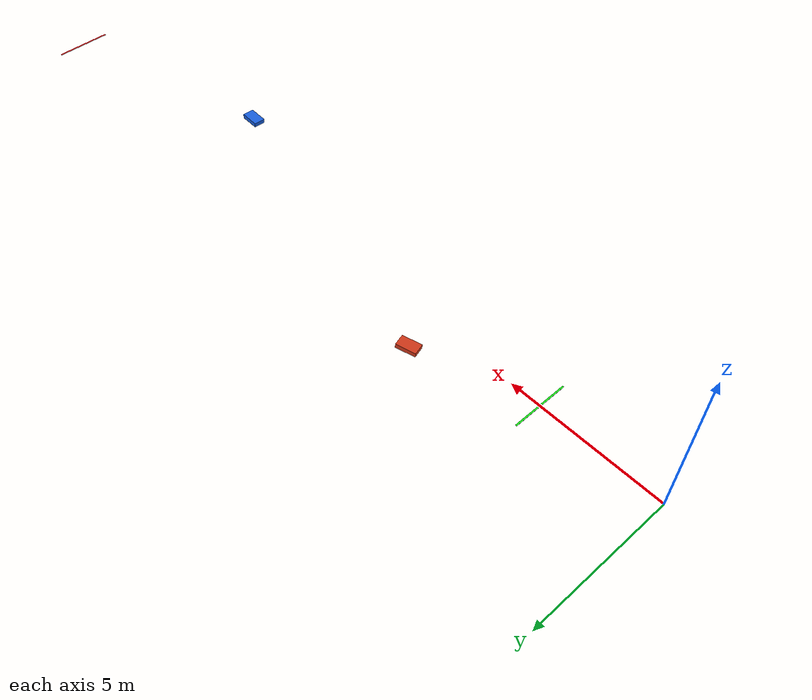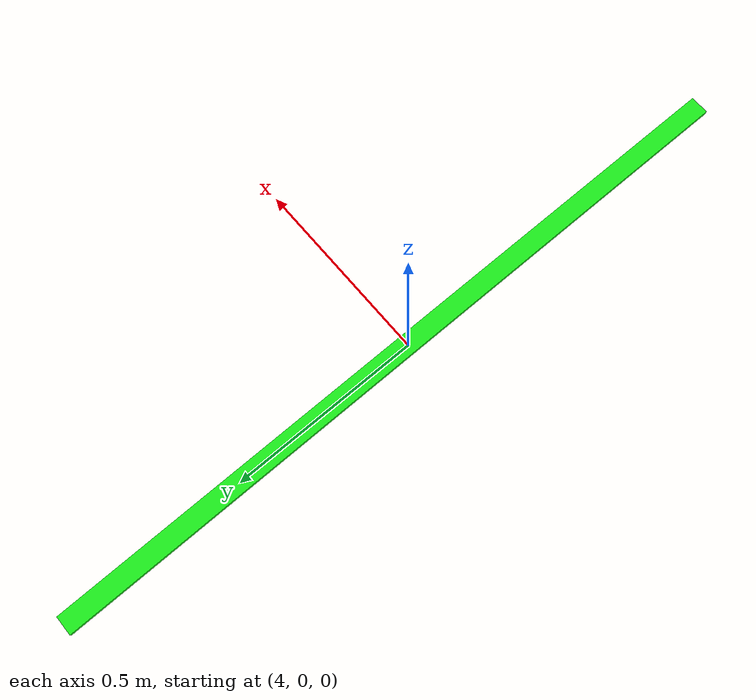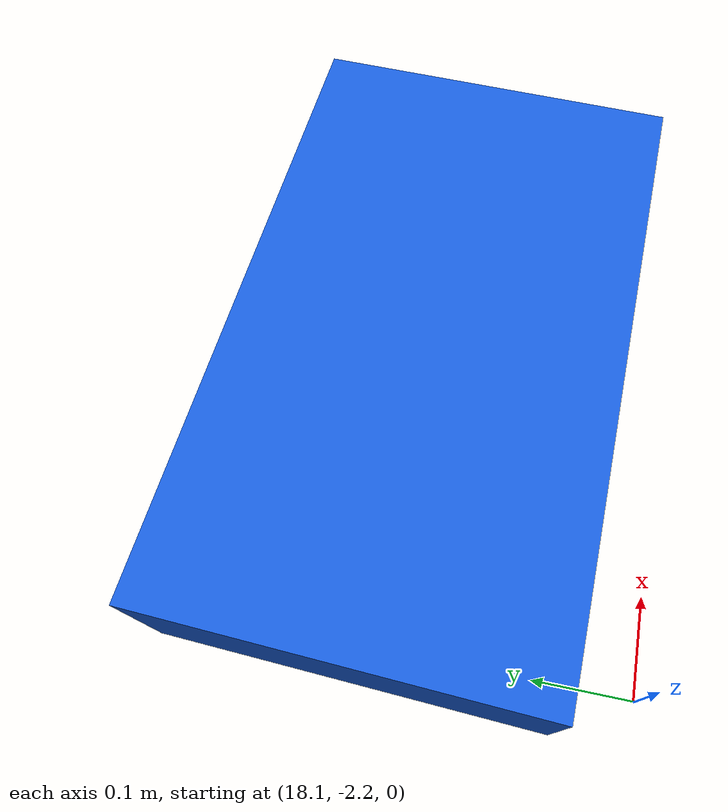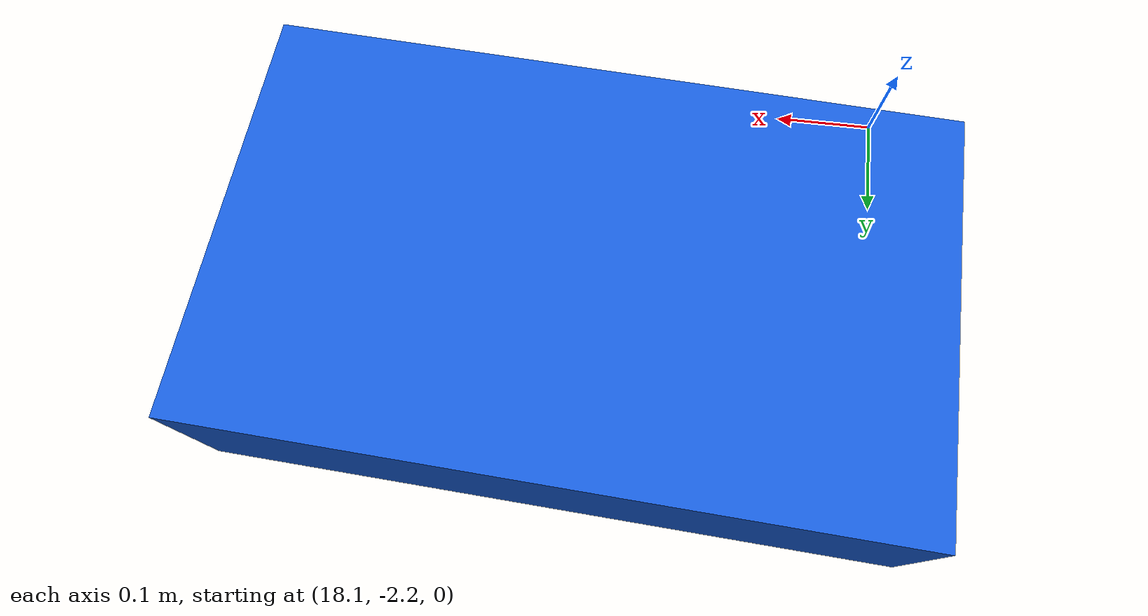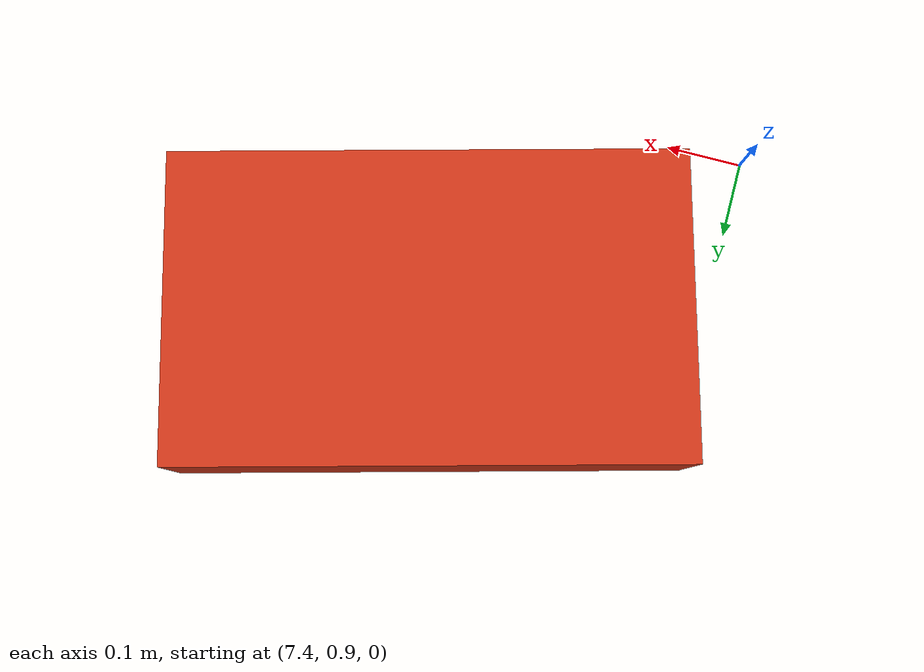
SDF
<sdf version="1.10">
 <world name="s_curve_avoidance">
  <physics name="default_physics" type="ode">
   <max_step_size>0.001</max_step_size>
   <real_time_factor>1.0</real_time_factor>
  </physics>
  <plugin filename="gz-sim-physics-system" name="gz::sim::systems::Physics"/>
  <plugin filename="gz-sim-user-commands-system" name="gz::sim::systems::UserCommands"/>
  <plugin filename="gz-sim-scene-broadcaster-system" name="gz::sim::systems::SceneBroadcaster"/>
  <plugin filename="gz-sim-sensors-system" name="gz::sim::systems::Sensors">
   <render_engine>ogre2</render_engine>
  </plugin>
  <gravity>0 0 -9.81</gravity>
  <scene>
   <ambient>0.65 0.65 0.65 1</ambient>
   <background>0.78 0.85 0.92 1</background>
   <shadows>true</shadows>
  </scene>
  <light type="directional" name="sun">
   <pose>15 0 18 0 0 0</pose>
   <diffuse>0.9 0.9 0.9 1</diffuse>
   <specular>0.2 0.2 0.2 1</specular>
   <direction>-0.4 0.1 -0.9</direction>
  </light>
  <model name="start_line">
   <static>true</static>
   <link name="line">
    <visual name="start_line_visual">
     <pose>4 0 0.009 0 0 1.57079633</pose>
     <geometry><box><size>1.95 0.05 0.012</size></box></geometry>
     <material><ambient>0.10 0.90 0.10 1</ambient><diffuse>0.10 0.90 0.10 1</diffuse></material>
    </visual>
   </link>
  </model>
  <model name="finish_line">
   <static>true</static>
   <link name="line">
    <visual name="finish_line_visual">
     <pose>26 0 0.009 0 0 1.57079633</pose>
     <geometry><box><size>1.95 0.05 0.012</size></box></geometry>
     <material><ambient>0.95 0.10 0.10 1</ambient><diffuse>0.95 0.10 0.10 1</diffuse></material>
    </visual>
   </link>
  </model>
  <model name="obstacle_1">
   <static>true</static>
   <pose>7.751295 1.219187 0.075 0 0 0.26662340</pose>
   <link name="box_link">
    <collision name="collision"><geometry><box><size>0.65 0.39 0.15</size></box></geometry></collision>
    <visual name="visual">
     <geometry><box><size>0.65 0.39 0.15</size></box></geometry>
     <material><ambient>0.82 0.22 0.10 1</ambient><diffuse>0.82 0.22 0.10 1</diffuse></material>
    </visual>
   </link>
  </model>
  <model name="obstacle_2">
   <static>true</static>
   <pose>18.389192 -1.942614 0.075 0 0 -0.04674404</pose>
   <link name="box_link">
    <collision name="collision"><geometry><box><size>0.65 0.39 0.15</size></box></geometry></collision>
    <visual name="visual">
     <geometry><box><size>0.65 0.39 0.15</size></box></geometry>
     <material><ambient>0.10 0.38 0.88 1</ambient><diffuse>0.10 0.38 0.88 1</diffuse></material>
    </visual>
   </link>
  </model>
 </world>
</sdf>
